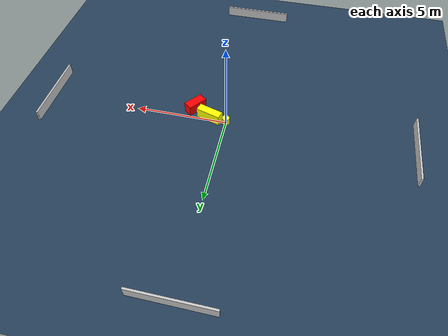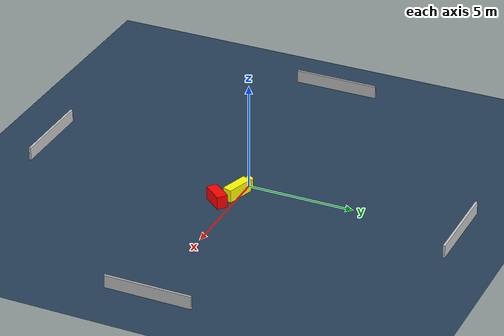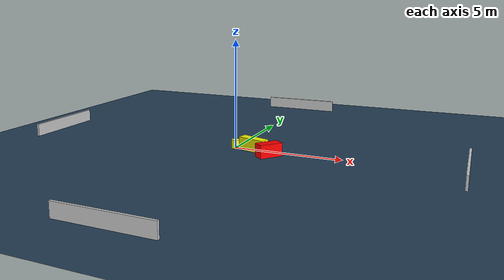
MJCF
<?xml version="1.0" ?>
<mujoco model="generated_environment">
  <option timestep="0.01" integrator="RK4" cone="elliptic"/>
  <default>
    <geom density="1"/>
  </default>
  <asset>
    <texture builtin="gradient" height="3072" name="skybox" rgb1="0.3 0.5 0.7" rgb2="0 0 0" type="skybox" width="512"/>
    <texture builtin="checker" height="300" name="groundplane" rgb1="0.2 0.3 0.4" rgb2="0.1 0.2 0.3" type="2d" width="300"/>
    <material name="groundplane" reflectance="0.2" texrepeat="5 5" texture="groundplane"/>
  </asset>
  <worldbody>
    <light dir="0 0 -1" directional="true" pos="0 0 1.5"/>
    <geom condim="3" friction="0.5 0.005 0.001" material="groundplane" name="floor" pos="0 0 0" size="0 0 0.05" type="plane"/>
    <body name="walls">
      <geom name="wall_1" condim="4" pos="-10.0 0.0 0.3" rgba="0.800000011920929 0.800000011920929 0.800000011920929 1.0" size="0.05 2.0 0.3" type="box"/>
      <geom name="wall_2" condim="4" pos="10.0 0.0 0.3" rgba="0.800000011920929 0.800000011920929 0.800000011920929 1.0" size="0.05 2.0 0.3" type="box"/>
      <geom name="wall_3" condim="4" pos="0.0 -10.0 0.3" rgba="0.800000011920929 0.800000011920929 0.800000011920929 1.0" size="2.0 0.05 0.3" type="box"/>
      <geom name="wall_4" condim="4" pos="0.0 10.0 0.3" rgba="0.800000011920929 0.800000011920929 0.800000011920929 1.0" size="2.0 0.05 0.3" type="box"/>
    </body>
    <body name="robot">
      <joint name="joint_x" type="slide" pos="0 0 0" axis="1 0 0"/>
      <joint name="joint_y" type="slide" pos="0 0 0" axis="0 1 0"/>
      <geom name="robot" type="cylinder" pos="0.0 0.0 0.2" size="0.2 0.2 0.0" mass="5.0" friction="1.0 0.005 0.0001" condim="4" rgba="1.0 1.0 0.0 1.0"/>
    </body>
    <body name="obstacle_1_movable">
      <geom name="obstacle_1_movable" condim="4" pos="0.9390591529417512 -0.14287433371960556 0.3" euler="0 0 73.07791643522296" friction="0.0 0.005 0.001" rgba="1.0 1.0 0.0 1.0" size="0.22254461306723738 0.6768489917987449 0.3" type="box" mass="0.1"/>
      <joint type="free"/>
    </body>
    <body name="obstacle_2_static">
      <geom name="obstacle_2_static" condim="4" pos="1.878231901027156 -0.6765731689204804 0.3" euler="0 0 51.150147633587956" friction="0.0 0.005 0.001" rgba="1.0 0.0 0.0 1.0" size="0.5444253166617927 0.25429115560186405 0.3" type="box"/>
    </body>
  </worldbody>
  <actuator>
    <motor name="actuator_x" joint="joint_x" gear="1" ctrlrange="-1 1"/>
    <motor name="actuator_y" joint="joint_y" gear="1" ctrlrange="-1 1"/>
  </actuator>
</mujoco>
